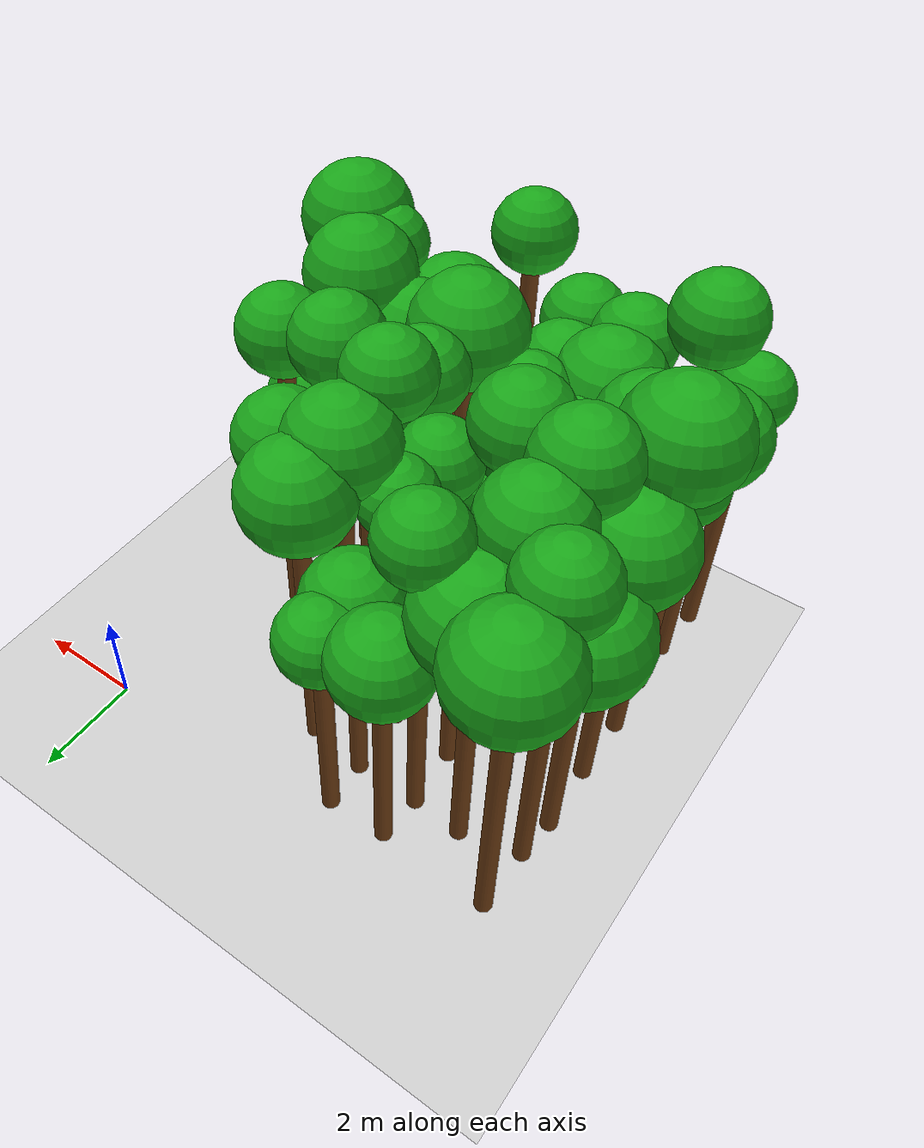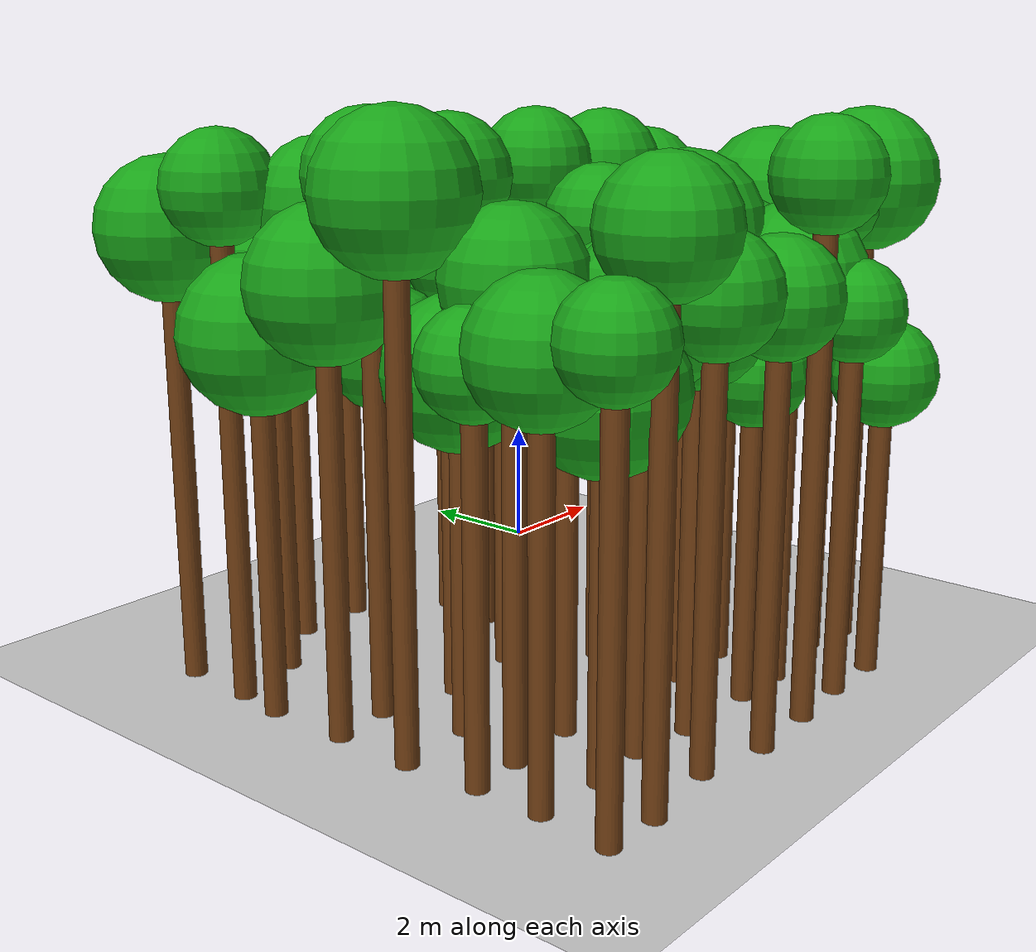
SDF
<sdf version="1.6">
 <world name="forest_world">
  <include><uri>model://sun</uri></include>
  <include><uri>model://ground_plane</uri></include>
  <model name="tree_1120_trunk">
   <static>true</static>
   <pose>-7.92 -7.97 2.75 0 0 0</pose>
   <link name="link">
    <collision name="collision">
     <geometry><cylinder><radius>0.16</radius><length>5.50</length></cylinder></geometry>
    </collision>
    <visual name="visual">
     <geometry><cylinder><radius>0.16</radius><length>5.50</length></cylinder></geometry>
     <material><ambient>0.35 0.20 0.05 1</ambient><diffuse>0.45 0.25 0.08 1</diffuse></material>
    </visual>
   </link>
  </model>
  <model name="tree_1120_leaf">
   <static>true</static>
   <pose>-7.92 -7.97 5.93 0 0 0</pose>
   <link name="link">
    <collision name="collision"><geometry><sphere><radius>0.71</radius></sphere></geometry></collision>
    <visual name="visual">
     <geometry><sphere><radius>0.71</radius></sphere></geometry>
     <material><ambient>0.05 0.45 0.05 1</ambient><diffuse>0.10 0.65 0.10 1</diffuse></material>
    </visual>
   </link>
  </model>
  <model name="tree_1121_trunk">
   <static>true</static>
   <pose>-7.84 -6.90 2.57 0 0 0</pose>
   <link name="link">
    <collision name="collision">
     <geometry><cylinder><radius>0.16</radius><length>5.13</length></cylinder></geometry>
    </collision>
    <visual name="visual">
     <geometry><cylinder><radius>0.16</radius><length>5.13</length></cylinder></geometry>
     <material><ambient>0.35 0.20 0.05 1</ambient><diffuse>0.45 0.25 0.08 1</diffuse></material>
    </visual>
   </link>
  </model>
  <model name="tree_1121_leaf">
   <static>true</static>
   <pose>-7.84 -6.90 5.68 0 0 0</pose>
   <link name="link">
    <collision name="collision"><geometry><sphere><radius>0.92</radius></sphere></geometry></collision>
    <visual name="visual">
     <geometry><sphere><radius>0.92</radius></sphere></geometry>
     <material><ambient>0.05 0.45 0.05 1</ambient><diffuse>0.10 0.65 0.10 1</diffuse></material>
    </visual>
   </link>
  </model>
  <model name="tree_1122_trunk">
   <static>true</static>
   <pose>-7.85 -5.90 2.49 0 0 0</pose>
   <link name="link">
    <collision name="collision">
     <geometry><cylinder><radius>0.16</radius><length>4.97</length></cylinder></geometry>
    </collision>
    <visual name="visual">
     <geometry><cylinder><radius>0.16</radius><length>4.97</length></cylinder></geometry>
     <material><ambient>0.35 0.20 0.05 1</ambient><diffuse>0.45 0.25 0.08 1</diffuse></material>
    </visual>
   </link>
  </model>
  <model name="tree_1122_leaf">
   <static>true</static>
   <pose>-7.85 -5.90 5.40 0 0 0</pose>
   <link name="link">
    <collision name="collision"><geometry><sphere><radius>0.71</radius></sphere></geometry></collision>
    <visual name="visual">
     <geometry><sphere><radius>0.71</radius></sphere></geometry>
     <material><ambient>0.05 0.45 0.05 1</ambient><diffuse>0.10 0.65 0.10 1</diffuse></material>
    </visual>
   </link>
  </model>
  <model name="tree_1123_trunk">
   <static>true</static>
   <pose>-7.95 -4.79 3.34 0 0 0</pose>
   <link name="link">
    <collision name="collision">
     <geometry><cylinder><radius>0.16</radius><length>6.67</length></cylinder></geometry>
    </collision>
    <visual name="visual">
     <geometry><cylinder><radius>0.16</radius><length>6.67</length></cylinder></geometry>
     <material><ambient>0.35 0.20 0.05 1</ambient><diffuse>0.45 0.25 0.08 1</diffuse></material>
    </visual>
   </link>
  </model>
  <model name="tree_1123_leaf">
   <static>true</static>
   <pose>-7.95 -4.79 7.29 0 0 0</pose>
   <link name="link">
    <collision name="collision"><geometry><sphere><radius>1.03</radius></sphere></geometry></collision>
    <visual name="visual">
     <geometry><sphere><radius>1.03</radius></sphere></geometry>
     <material><ambient>0.05 0.45 0.05 1</ambient><diffuse>0.10 0.65 0.10 1</diffuse></material>
    </visual>
   </link>
  </model>
  <model name="tree_1124_trunk">
   <static>true</static>
   <pose>-7.95 -3.57 2.74 0 0 0</pose>
   <link name="link">
    <collision name="collision">
     <geometry><cylinder><radius>0.16</radius><length>5.48</length></cylinder></geometry>
    </collision>
    <visual name="visual">
     <geometry><cylinder><radius>0.16</radius><length>5.48</length></cylinder></geometry>
     <material><ambient>0.35 0.20 0.05 1</ambient><diffuse>0.45 0.25 0.08 1</diffuse></material>
    </visual>
   </link>
  </model>
  <model name="tree_1124_leaf">
   <static>true</static>
   <pose>-7.95 -3.57 6.10 0 0 0</pose>
   <link name="link">
    <collision name="collision"><geometry><sphere><radius>1.03</radius></sphere></geometry></collision>
    <visual name="visual">
     <geometry><sphere><radius>1.03</radius></sphere></geometry>
     <material><ambient>0.05 0.45 0.05 1</ambient><diffuse>0.10 0.65 0.10 1</diffuse></material>
    </visual>
   </link>
  </model>
  <model name="tree_1125_trunk">
   <static>true</static>
   <pose>-7.99 -2.32 2.34 0 0 0</pose>
   <link name="link">
    <collision name="collision">
     <geometry><cylinder><radius>0.16</radius><length>4.68</length></cylinder></geometry>
    </collision>
    <visual name="visual">
     <geometry><cylinder><radius>0.16</radius><length>4.68</length></cylinder></geometry>
     <material><ambient>0.35 0.20 0.05 1</ambient><diffuse>0.45 0.25 0.08 1</diffuse></material>
    </visual>
   </link>
  </model>
  <model name="tree_1125_leaf">
   <static>true</static>
   <pose>-7.99 -2.32 5.32 0 0 0</pose>
   <link name="link">
    <collision name="collision"><geometry><sphere><radius>1.07</radius></sphere></geometry></collision>
    <visual name="visual">
     <geometry><sphere><radius>1.07</radius></sphere></geometry>
     <material><ambient>0.05 0.45 0.05 1</ambient><diffuse>0.10 0.65 0.10 1</diffuse></material>
    </visual>
   </link>
  </model>
  <model name="tree_1126_trunk">
   <static>true</static>
   <pose>-7.90 -1.56 3.34 0 0 0</pose>
   <link name="link">
    <collision name="collision">
     <geometry><cylinder><radius>0.16</radius><length>6.69</length></cylinder></geometry>
    </collision>
    <visual name="visual">
     <geometry><cylinder><radius>0.16</radius><length>6.69</length></cylinder></geometry>
     <material><ambient>0.35 0.20 0.05 1</ambient><diffuse>0.45 0.25 0.08 1</diffuse></material>
    </visual>
   </link>
  </model>
  <model name="tree_1126_leaf">
   <static>true</static>
   <pose>-7.90 -1.56 7.15 0 0 0</pose>
   <link name="link">
    <collision name="collision"><geometry><sphere><radius>0.78</radius></sphere></geometry></collision>
    <visual name="visual">
     <geometry><sphere><radius>0.78</radius></sphere></geometry>
     <material><ambient>0.05 0.45 0.05 1</ambient><diffuse>0.10 0.65 0.10 1</diffuse></material>
    </visual>
   </link>
  </model>
  <model name="tree_1127_trunk">
   <static>true</static>
   <pose>-7.86 -0.41 2.96 0 0 0</pose>
   <link name="link">
    <collision name="collision">
     <geometry><cylinder><radius>0.16</radius><length>5.92</length></cylinder></geometry>
    </collision>
    <visual name="visual">
     <geometry><cylinder><radius>0.16</radius><length>5.92</length></cylinder></geometry>
     <material><ambient>0.35 0.20 0.05 1</ambient><diffuse>0.45 0.25 0.08 1</diffuse></material>
    </visual>
   </link>
  </model>
  <model name="tree_1127_leaf">
   <static>true</static>
   <pose>-7.86 -0.41 6.52 0 0 0</pose>
   <link name="link">
    <collision name="collision"><geometry><sphere><radius>1.01</radius></sphere></geometry></collision>
    <visual name="visual">
     <geometry><sphere><radius>1.01</radius></sphere></geometry>
     <material><ambient>0.05 0.45 0.05 1</ambient><diffuse>0.10 0.65 0.10 1</diffuse></material>
    </visual>
   </link>
  </model>
  <model name="tree_1175_trunk">
   <static>true</static>
   <pose>-7.05 -8.00 3.27 0 0 0</pose>
   <link name="link">
    <collision name="collision">
     <geometry><cylinder><radius>0.16</radius><length>6.54</length></cylinder></geometry>
    </collision>
    <visual name="visual">
     <geometry><cylinder><radius>0.16</radius><length>6.54</length></cylinder></geometry>
     <material><ambient>0.35 0.20 0.05 1</ambient><diffuse>0.45 0.25 0.08 1</diffuse></material>
    </visual>
   </link>
  </model>
  <model name="tree_1175_leaf">
   <static>true</static>
   <pose>-7.05 -8.00 7.05 0 0 0</pose>
   <link name="link">
    <collision name="collision"><geometry><sphere><radius>0.84</radius></sphere></geometry></collision>
    <visual name="visual">
     <geometry><sphere><radius>0.84</radius></sphere></geometry>
     <material><ambient>0.05 0.45 0.05 1</ambient><diffuse>0.10 0.65 0.10 1</diffuse></material>
    </visual>
   </link>
  </model>
  <model name="tree_1176_trunk">
   <static>true</static>
   <pose>-6.78 -6.98 2.21 0 0 0</pose>
   <link name="link">
    <collision name="collision">
     <geometry><cylinder><radius>0.16</radius><length>4.41</length></cylinder></geometry>
    </collision>
    <visual name="visual">
     <geometry><cylinder><radius>0.16</radius><length>4.41</length></cylinder></geometry>
     <material><ambient>0.35 0.20 0.05 1</ambient><diffuse>0.45 0.25 0.08 1</diffuse></material>
    </visual>
   </link>
  </model>
  <model name="tree_1176_leaf">
   <static>true</static>
   <pose>-6.78 -6.98 5.04 0 0 0</pose>
   <link name="link">
    <collision name="collision"><geometry><sphere><radius>1.05</radius></sphere></geometry></collision>
    <visual name="visual">
     <geometry><sphere><radius>1.05</radius></sphere></geometry>
     <material><ambient>0.05 0.45 0.05 1</ambient><diffuse>0.10 0.65 0.10 1</diffuse></material>
    </visual>
   </link>
  </model>
  <model name="tree_1177_trunk">
   <static>true</static>
   <pose>-7.03 -5.82 2.85 0 0 0</pose>
   <link name="link">
    <collision name="collision">
     <geometry><cylinder><radius>0.16</radius><length>5.71</length></cylinder></geometry>
    </collision>
    <visual name="visual">
     <geometry><cylinder><radius>0.16</radius><length>5.71</length></cylinder></geometry>
     <material><ambient>0.35 0.20 0.05 1</ambient><diffuse>0.45 0.25 0.08 1</diffuse></material>
    </visual>
   </link>
  </model>
  <model name="tree_1177_leaf">
   <static>true</static>
   <pose>-7.03 -5.82 6.27 0 0 0</pose>
   <link name="link">
    <collision name="collision"><geometry><sphere><radius>0.93</radius></sphere></geometry></collision>
    <visual name="visual">
     <geometry><sphere><radius>0.93</radius></sphere></geometry>
     <material><ambient>0.05 0.45 0.05 1</ambient><diffuse>0.10 0.65 0.10 1</diffuse></material>
    </visual>
   </link>
  </model>
  <model name="tree_1178_trunk">
   <static>true</static>
   <pose>-6.78 -4.72 2.17 0 0 0</pose>
   <link name="link">
    <collision name="collision">
     <geometry><cylinder><radius>0.16</radius><length>4.33</length></cylinder></geometry>
    </collision>
    <visual name="visual">
     <geometry><cylinder><radius>0.16</radius><length>4.33</length></cylinder></geometry>
     <material><ambient>0.35 0.20 0.05 1</ambient><diffuse>0.45 0.25 0.08 1</diffuse></material>
    </visual>
   </link>
  </model>
  <model name="tree_1178_leaf">
   <static>true</static>
   <pose>-6.78 -4.72 4.95 0 0 0</pose>
   <link name="link">
    <collision name="collision"><geometry><sphere><radius>1.03</radius></sphere></geometry></collision>
    <visual name="visual">
     <geometry><sphere><radius>1.03</radius></sphere></geometry>
     <material><ambient>0.05 0.45 0.05 1</ambient><diffuse>0.10 0.65 0.10 1</diffuse></material>
    </visual>
   </link>
  </model>
  <model name="tree_1179_trunk">
   <static>true</static>
   <pose>-7.07 -3.48 3.42 0 0 0</pose>
   <link name="link">
    <collision name="collision">
     <geometry><cylinder><radius>0.16</radius><length>6.84</length></cylinder></geometry>
    </collision>
    <visual name="visual">
     <geometry><cylinder><radius>0.16</radius><length>6.84</length></cylinder></geometry>
     <material><ambient>0.35 0.20 0.05 1</ambient><diffuse>0.45 0.25 0.08 1</diffuse></material>
    </visual>
   </link>
  </model>
  <model name="tree_1179_leaf">
   <static>true</static>
   <pose>-7.07 -3.48 7.36 0 0 0</pose>
   <link name="link">
    <collision name="collision"><geometry><sphere><radius>0.87</radius></sphere></geometry></collision>
    <visual name="visual">
     <geometry><sphere><radius>0.87</radius></sphere></geometry>
     <material><ambient>0.05 0.45 0.05 1</ambient><diffuse>0.10 0.65 0.10 1</diffuse></material>
    </visual>
   </link>
  </model>
  <model name="tree_1180_trunk">
   <static>true</static>
   <pose>-6.92 -2.46 3.19 0 0 0</pose>
   <link name="link">
    <collision name="collision">
     <geometry><cylinder><radius>0.16</radius><length>6.37</length></cylinder></geometry>
    </collision>
    <visual name="visual">
     <geometry><cylinder><radius>0.16</radius><length>6.37</length></cylinder></geometry>
     <material><ambient>0.35 0.20 0.05 1</ambient><diffuse>0.45 0.25 0.08 1</diffuse></material>
    </visual>
   </link>
  </model>
  <model name="tree_1180_leaf">
   <static>true</static>
   <pose>-6.92 -2.46 6.91 0 0 0</pose>
   <link name="link">
    <collision name="collision"><geometry><sphere><radius>0.91</radius></sphere></geometry></collision>
    <visual name="visual">
     <geometry><sphere><radius>0.91</radius></sphere></geometry>
     <material><ambient>0.05 0.45 0.05 1</ambient><diffuse>0.10 0.65 0.10 1</diffuse></material>
    </visual>
   </link>
  </model>
  <model name="tree_1181_trunk">
   <static>true</static>
   <pose>-6.80 -1.26 2.68 0 0 0</pose>
   <link name="link">
    <collision name="collision">
     <geometry><cylinder><radius>0.16</radius><length>5.37</length></cylinder></geometry>
    </collision>
    <visual name="visual">
     <geometry><cylinder><radius>0.16</radius><length>5.37</length></cylinder></geometry>
     <material><ambient>0.35 0.20 0.05 1</ambient><diffuse>0.45 0.25 0.08 1</diffuse></material>
    </visual>
   </link>
  </model>
  <model name="tree_1181_leaf">
   <static>true</static>
   <pose>-6.80 -1.26 5.99 0 0 0</pose>
   <link name="link">
    <collision name="collision"><geometry><sphere><radius>1.03</radius></sphere></geometry></collision>
    <visual name="visual">
     <geometry><sphere><radius>1.03</radius></sphere></geometry>
     <material><ambient>0.05 0.45 0.05 1</ambient><diffuse>0.10 0.65 0.10 1</diffuse></material>
    </visual>
   </link>
  </model>
  <model name="tree_1230_trunk">
   <static>true</static>
   <pose>-5.76 -7.83 2.83 0 0 0</pose>
   <link name="link">
    <collision name="collision">
     <geometry><cylinder><radius>0.16</radius><length>5.66</length></cylinder></geometry>
    </collision>
    <visual name="visual">
     <geometry><cylinder><radius>0.16</radius><length>5.66</length></cylinder></geometry>
     <material><ambient>0.35 0.20 0.05 1</ambient><diffuse>0.45 0.25 0.08 1</diffuse></material>
    </visual>
   </link>
  </model>
  <model name="tree_1230_leaf">
   <static>true</static>
   <pose>-5.76 -7.83 6.14 0 0 0</pose>
   <link name="link">
    <collision name="collision"><geometry><sphere><radius>0.81</radius></sphere></geometry></collision>
    <visual name="visual">
     <geometry><sphere><radius>0.81</radius></sphere></geometry>
     <material><ambient>0.05 0.45 0.05 1</ambient><diffuse>0.10 0.65 0.10 1</diffuse></material>
    </visual>
   </link>
  </model>
  <model name="tree_1231_trunk">
   <static>true</static>
   <pose>-5.83 -6.86 2.60 0 0 0</pose>
   <link name="link">
    <collision name="collision">
     <geometry><cylinder><radius>0.16</radius><length>5.20</length></cylinder></geometry>
    </collision>
    <visual name="visual">
     <geometry><cylinder><radius>0.16</radius><length>5.20</length></cylinder></geometry>
     <material><ambient>0.35 0.20 0.05 1</ambient><diffuse>0.45 0.25 0.08 1</diffuse></material>
    </visual>
   </link>
  </model>
  <model name="tree_1231_leaf">
   <static>true</static>
   <pose>-5.83 -6.86 5.82 0 0 0</pose>
   <link name="link">
    <collision name="collision"><geometry><sphere><radius>1.04</radius></sphere></geometry></collision>
    <visual name="visual">
     <geometry><sphere><radius>1.04</radius></sphere></geometry>
     <material><ambient>0.05 0.45 0.05 1</ambient><diffuse>0.10 0.65 0.10 1</diffuse></material>
    </visual>
   </link>
  </model>
  <model name="tree_1232_trunk">
   <static>true</static>
   <pose>-5.91 -5.75 2.50 0 0 0</pose>
   <link name="link">
    <collision name="collision">
     <geometry><cylinder><radius>0.16</radius><length>5.01</length></cylinder></geometry>
    </collision>
    <visual name="visual">
     <geometry><cylinder><radius>0.16</radius><length>5.01</length></cylinder></geometry>
     <material><ambient>0.35 0.20 0.05 1</ambient><diffuse>0.45 0.25 0.08 1</diffuse></material>
    </visual>
   </link>
  </model>
  <model name="tree_1232_leaf">
   <static>true</static>
   <pose>-5.91 -5.75 5.47 0 0 0</pose>
   <link name="link">
    <collision name="collision"><geometry><sphere><radius>0.77</radius></sphere></geometry></collision>
    <visual name="visual">
     <geometry><sphere><radius>0.77</radius></sphere></geometry>
     <material><ambient>0.05 0.45 0.05 1</ambient><diffuse>0.10 0.65 0.10 1</diffuse></material>
    </visual>
   </link>
  </model>
  <model name="tree_1233_trunk">
   <static>true</static>
   <pose>-5.67 -4.75 2.68 0 0 0</pose>
   <link name="link">
    <collision name="collision">
     <geometry><cylinder><radius>0.16</radius><length>5.35</length></cylinder></geometry>
    </collision>
    <visual name="visual">
     <geometry><cylinder><radius>0.16</radius><length>5.35</length></cylinder></geometry>
     <material><ambient>0.35 0.20 0.05 1</ambient><diffuse>0.45 0.25 0.08 1</diffuse></material>
    </visual>
   </link>
  </model>
  <model name="tree_1233_leaf">
   <static>true</static>
   <pose>-5.67 -4.75 5.91 0 0 0</pose>
   <link name="link">
    <collision name="collision"><geometry><sphere><radius>0.93</radius></sphere></geometry></collision>
    <visual name="visual">
     <geometry><sphere><radius>0.93</radius></sphere></geometry>
     <material><ambient>0.05 0.45 0.05 1</ambient><diffuse>0.10 0.65 0.10 1</diffuse></material>
    </visual>
   </link>
  </model>
  <model name="tree_1234_trunk">
   <static>true</static>
   <pose>-5.90 -3.76 3.39 0 0 0</pose>
   <link name="link">
    <collision name="collision">
     <geometry><cylinder><radius>0.16</radius><length>6.77</length></cylinder></geometry>
    </collision>
    <visual name="visual">
     <geometry><cylinder><radius>0.16</radius><length>6.77</length></cylinder></geometry>
     <material><ambient>0.35 0.20 0.05 1</ambient><diffuse>0.45 0.25 0.08 1</diffuse></material>
    </visual>
   </link>
  </model>
  <model name="tree_1234_leaf">
   <static>true</static>
   <pose>-5.90 -3.76 7.28 0 0 0</pose>
   <link name="link">
    <collision name="collision"><geometry><sphere><radius>0.84</radius></sphere></geometry></collision>
    <visual name="visual">
     <geometry><sphere><radius>0.84</radius></sphere></geometry>
     <material><ambient>0.05 0.45 0.05 1</ambient><diffuse>0.10 0.65 0.10 1</diffuse></material>
    </visual>
   </link>
  </model>
  <model name="tree_1235_trunk">
   <static>true</static>
   <pose>-5.78 -2.44 2.12 0 0 0</pose>
   <link name="link">
    <collision name="collision">
     <geometry><cylinder><radius>0.16</radius><length>4.25</length></cylinder></geometry>
    </collision>
    <visual name="visual">
     <geometry><cylinder><radius>0.16</radius><length>4.25</length></cylinder></geometry>
     <material><ambient>0.35 0.20 0.05 1</ambient><diffuse>0.45 0.25 0.08 1</diffuse></material>
    </visual>
   </link>
  </model>
  <model name="tree_1235_leaf">
   <static>true</static>
   <pose>-5.78 -2.44 4.80 0 0 0</pose>
   <link name="link">
    <collision name="collision"><geometry><sphere><radius>0.92</radius></sphere></geometry></collision>
    <visual name="visual">
     <geometry><sphere><radius>0.92</radius></sphere></geometry>
     <material><ambient>0.05 0.45 0.05 1</ambient><diffuse>0.10 0.65 0.10 1</diffuse></material>
    </visual>
   </link>
  </model>
  <model name="tree_1236_trunk">
   <static>true</static>
   <pose>-5.85 -1.30 3.24 0 0 0</pose>
   <link name="link">
    <collision name="collision">
     <geometry><cylinder><radius>0.16</radius><length>6.47</length></cylinder></geometry>
    </collision>
    <visual name="visual">
     <geometry><cylinder><radius>0.16</radius><length>6.47</length></cylinder></geometry>
     <material><ambient>0.35 0.20 0.05 1</ambient><diffuse>0.45 0.25 0.08 1</diffuse></material>
    </visual>
   </link>
  </model>
  <model name="tree_1236_leaf">
   <static>true</static>
   <pose>-5.85 -1.30 6.92 0 0 0</pose>
   <link name="link">
    <collision name="collision"><geometry><sphere><radius>0.75</radius></sphere></geometry></collision>
    <visual name="visual">
     <geometry><sphere><radius>0.75</radius></sphere></geometry>
     <material><ambient>0.05 0.45 0.05 1</ambient><diffuse>0.10 0.65 0.10 1</diffuse></material>
    </visual>
   </link>
  </model>
  <model name="tree_1237_trunk">
   <static>true</static>
   <pose>-5.76 -0.47 2.21 0 0 0</pose>
   <link name="link">
    <collision name="collision">
     <geometry><cylinder><radius>0.16</radius><length>4.43</length></cylinder></geometry>
    </collision>
    <visual name="visual">
     <geometry><cylinder><radius>0.16</radius><length>4.43</length></cylinder></geometry>
     <material><ambient>0.35 0.20 0.05 1</ambient><diffuse>0.45 0.25 0.08 1</diffuse></material>
    </visual>
   </link>
  </model>
  <model name="tree_1237_leaf">
   <static>true</static>
   <pose>-5.76 -0.47 4.96 0 0 0</pose>
   <link name="link">
    <collision name="collision"><geometry><sphere><radius>0.88</radius></sphere></geometry></collision>
    <visual name="visual">
     <geometry><sphere><radius>0.88</radius></sphere></geometry>
     <material><ambient>0.05 0.45 0.05 1</ambient><diffuse>0.10 0.65 0.10 1</diffuse></material>
    </visual>
   </link>
  </model>
  <model name="tree_1285_trunk">
   <static>true</static>
   <pose>-4.66 -8.05 2.75 0 0 0</pose>
   <link name="link">
    <collision name="collision">
     <geometry><cylinder><radius>0.16</radius><length>5.50</length></cylinder></geometry>
    </collision>
    <visual name="visual">
     <geometry><cylinder><radius>0.16</radius><length>5.50</length></cylinder></geometry>
     <material><ambient>0.35 0.20 0.05 1</ambient><diffuse>0.45 0.25 0.08 1</diffuse></material>
    </visual>
   </link>
  </model>
  <model name="tree_1285_leaf">
   <static>true</static>
   <pose>-4.66 -8.05 5.98 0 0 0</pose>
   <link name="link">
    <collision name="collision"><geometry><sphere><radius>0.79</radius></sphere></geometry></collision>
    <visual name="visual">
     <geometry><sphere><radius>0.79</radius></sphere></geometry>
     <material><ambient>0.05 0.45 0.05 1</ambient><diffuse>0.10 0.65 0.10 1</diffuse></material>
    </visual>
   </link>
  </model>
  <model name="tree_1286_trunk">
   <static>true</static>
   <pose>-4.87 -7.01 2.54 0 0 0</pose>
   <link name="link">
    <collision name="collision">
     <geometry><cylinder><radius>0.16</radius><length>5.07</length></cylinder></geometry>
    </collision>
    <visual name="visual">
     <geometry><cylinder><radius>0.16</radius><length>5.07</length></cylinder></geometry>
     <material><ambient>0.35 0.20 0.05 1</ambient><diffuse>0.45 0.25 0.08 1</diffuse></material>
    </visual>
   </link>
  </model>
  <model name="tree_1286_leaf">
   <static>true</static>
   <pose>-4.87 -7.01 5.61 0 0 0</pose>
   <link name="link">
    <collision name="collision"><geometry><sphere><radius>0.89</radius></sphere></geometry></collision>
    <visual name="visual">
     <geometry><sphere><radius>0.89</radius></sphere></geometry>
     <material><ambient>0.05 0.45 0.05 1</ambient><diffuse>0.10 0.65 0.10 1</diffuse></material>
    </visual>
   </link>
  </model>
  <model name="tree_1287_trunk">
   <static>true</static>
   <pose>-4.88 -5.83 2.63 0 0 0</pose>
   <link name="link">
    <collision name="collision">
     <geometry><cylinder><radius>0.16</radius><length>5.26</length></cylinder></geometry>
    </collision>
    <visual name="visual">
     <geometry><cylinder><radius>0.16</radius><length>5.26</length></cylinder></geometry>
     <material><ambient>0.35 0.20 0.05 1</ambient><diffuse>0.45 0.25 0.08 1</diffuse></material>
    </visual>
   </link>
  </model>
  <model name="tree_1287_leaf">
   <static>true</static>
   <pose>-4.88 -5.83 5.76 0 0 0</pose>
   <link name="link">
    <collision name="collision"><geometry><sphere><radius>0.83</radius></sphere></geometry></collision>
    <visual name="visual">
     <geometry><sphere><radius>0.83</radius></sphere></geometry>
     <material><ambient>0.05 0.45 0.05 1</ambient><diffuse>0.10 0.65 0.10 1</diffuse></material>
    </visual>
   </link>
  </model>
  <model name="tree_1288_trunk">
   <static>true</static>
   <pose>-4.85 -4.74 2.15 0 0 0</pose>
   <link name="link">
    <collision name="collision">
     <geometry><cylinder><radius>0.16</radius><length>4.30</length></cylinder></geometry>
    </collision>
    <visual name="visual">
     <geometry><cylinder><radius>0.16</radius><length>4.30</length></cylinder></geometry>
     <material><ambient>0.35 0.20 0.05 1</ambient><diffuse>0.45 0.25 0.08 1</diffuse></material>
    </visual>
   </link>
  </model>
  <model name="tree_1288_leaf">
   <static>true</static>
   <pose>-4.85 -4.74 4.76 0 0 0</pose>
   <link name="link">
    <collision name="collision"><geometry><sphere><radius>0.76</radius></sphere></geometry></collision>
    <visual name="visual">
     <geometry><sphere><radius>0.76</radius></sphere></geometry>
     <material><ambient>0.05 0.45 0.05 1</ambient><diffuse>0.10 0.65 0.10 1</diffuse></material>
    </visual>
   </link>
  </model>
  <model name="tree_1289_trunk">
   <static>true</static>
   <pose>-4.60 -3.59 2.73 0 0 0</pose>
   <link name="link">
    <collision name="collision">
     <geometry><cylinder><radius>0.16</radius><length>5.46</length></cylinder></geometry>
    </collision>
    <visual name="visual">
     <geometry><cylinder><radius>0.16</radius><length>5.46</length></cylinder></geometry>
     <material><ambient>0.35 0.20 0.05 1</ambient><diffuse>0.45 0.25 0.08 1</diffuse></material>
    </visual>
   </link>
  </model>
  <model name="tree_1289_leaf">
   <static>true</static>
   <pose>-4.60 -3.59 5.91 0 0 0</pose>
   <link name="link">
    <collision name="collision"><geometry><sphere><radius>0.75</radius></sphere></geometry></collision>
    <visual name="visual">
     <geometry><sphere><radius>0.75</radius></sphere></geometry>
     <material><ambient>0.05 0.45 0.05 1</ambient><diffuse>0.10 0.65 0.10 1</diffuse></material>
    </visual>
   </link>
  </model>
  <model name="tree_1290_trunk">
   <static>true</static>
   <pose>-4.53 -2.54 2.75 0 0 0</pose>
   <link name="link">
    <collision name="collision">
     <geometry><cylinder><radius>0.16</radius><length>5.51</length></cylinder></geometry>
    </collision>
    <visual name="visual">
     <geometry><cylinder><radius>0.16</radius><length>5.51</length></cylinder></geometry>
     <material><ambient>0.35 0.20 0.05 1</ambient><diffuse>0.45 0.25 0.08 1</diffuse></material>
    </visual>
   </link>
  </model>
  <model name="tree_1290_leaf">
   <static>true</static>
   <pose>-4.53 -2.54 5.93 0 0 0</pose>
   <link name="link">
    <collision name="collision"><geometry><sphere><radius>0.70</radius></sphere></geometry></collision>
    <visual name="visual">
     <geometry><sphere><radius>0.70</radius></sphere></geometry>
     <material><ambient>0.05 0.45 0.05 1</ambient><diffuse>0.10 0.65 0.10 1</diffuse></material>
    </visual>
   </link>
  </model>
  <model name="tree_1291_trunk">
   <static>true</static>
   <pose>-4.62 -1.29 2.08 0 0 0</pose>
   <link name="link">
    <collision name="collision">
     <geometry><cylinder><radius>0.16</radius><length>4.16</length></cylinder></geometry>
    </collision>
    <visual name="visual">
     <geometry><cylinder><radius>0.16</radius><length>4.16</length></cylinder></geometry>
     <material><ambient>0.35 0.20 0.05 1</ambient><diffuse>0.45 0.25 0.08 1</diffuse></material>
    </visual>
   </link>
  </model>
  <model name="tree_1291_leaf">
   <static>true</static>
   <pose>-4.62 -1.29 4.69 0 0 0</pose>
   <link name="link">
    <collision name="collision"><geometry><sphere><radius>0.89</radius></sphere></geometry></collision>
    <visual name="visual">
     <geometry><sphere><radius>0.89</radius></sphere></geometry>
     <material><ambient>0.05 0.45 0.05 1</ambient><diffuse>0.10 0.65 0.10 1</diffuse></material>
    </visual>
   </link>
  </model>
  <model name="tree_1292_trunk">
   <static>true</static>
   <pose>-4.64 -0.43 2.11 0 0 0</pose>
   <link name="link">
    <collision name="collision">
     <geometry><cylinder><radius>0.16</radius><length>4.22</length></cylinder></geometry>
    </collision>
    <visual name="visual">
     <geometry><cylinder><radius>0.16</radius><length>4.22</length></cylinder></geometry>
     <material><ambient>0.35 0.20 0.05 1</ambient><diffuse>0.45 0.25 0.08 1</diffuse></material>
    </visual>
   </link>
  </model>
  <model name="tree_1292_leaf">
   <static>true</static>
   <pose>-4.64 -0.43 4.68 0 0 0</pose>
   <link name="link">
    <collision name="collision"><geometry><sphere><radius>0.75</radius></sphere></geometry></collision>
    <visual name="visual">
     <geometry><sphere><radius>0.75</radius></sphere></geometry>
     <material><ambient>0.05 0.45 0.05 1</ambient><diffuse>0.10 0.65 0.10 1</diffuse></material>
    </visual>
   </link>
  </model>
  <model name="tree_1340_trunk">
   <static>true</static>
   <pose>-3.53 -8.00 3.46 0 0 0</pose>
   <link name="link">
    <collision name="collision">
     <geometry><cylinder><radius>0.16</radius><length>6.91</length></cylinder></geometry>
    </collision>
    <visual name="visual">
     <geometry><cylinder><radius>0.16</radius><length>6.91</length></cylinder></geometry>
     <material><ambient>0.35 0.20 0.05 1</ambient><diffuse>0.45 0.25 0.08 1</diffuse></material>
    </visual>
   </link>
  </model>
  <model name="tree_1340_leaf">
   <static>true</static>
   <pose>-3.53 -8.00 7.37 0 0 0</pose>
   <link name="link">
    <collision name="collision"><geometry><sphere><radius>0.76</radius></sphere></geometry></collision>
    <visual name="visual">
     <geometry><sphere><radius>0.76</radius></sphere></geometry>
     <material><ambient>0.05 0.45 0.05 1</ambient><diffuse>0.10 0.65 0.10 1</diffuse></material>
    </visual>
   </link>
  </model>
  <model name="tree_1341_trunk">
   <static>true</static>
   <pose>-3.48 -7.02 2.13 0 0 0</pose>
   <link name="link">
    <collision name="collision">
     <geometry><cylinder><radius>0.16</radius><length>4.26</length></cylinder></geometry>
    </collision>
    <visual name="visual">
     <geometry><cylinder><radius>0.16</radius><length>4.26</length></cylinder></geometry>
     <material><ambient>0.35 0.20 0.05 1</ambient><diffuse>0.45 0.25 0.08 1</diffuse></material>
    </visual>
   </link>
  </model>
  <model name="tree_1341_leaf">
   <static>true</static>
   <pose>-3.48 -7.02 4.71 0 0 0</pose>
   <link name="link">
    <collision name="collision"><geometry><sphere><radius>0.75</radius></sphere></geometry></collision>
    <visual name="visual">
     <geometry><sphere><radius>0.75</radius></sphere></geometry>
     <material><ambient>0.05 0.45 0.05 1</ambient><diffuse>0.10 0.65 0.10 1</diffuse></material>
    </visual>
   </link>
  </model>
  <model name="tree_1342_trunk">
   <static>true</static>
   <pose>-3.56 -5.93 2.96 0 0 0</pose>
   <link name="link">
    <collision name="collision">
     <geometry><cylinder><radius>0.16</radius><length>5.91</length></cylinder></geometry>
    </collision>
    <visual name="visual">
     <geometry><cylinder><radius>0.16</radius><length>5.91</length></cylinder></geometry>
     <material><ambient>0.35 0.20 0.05 1</ambient><diffuse>0.45 0.25 0.08 1</diffuse></material>
    </visual>
   </link>
  </model>
  <model name="tree_1342_leaf">
   <static>true</static>
   <pose>-3.56 -5.93 6.55 0 0 0</pose>
   <link name="link">
    <collision name="collision"><geometry><sphere><radius>1.07</radius></sphere></geometry></collision>
    <visual name="visual">
     <geometry><sphere><radius>1.07</radius></sphere></geometry>
     <material><ambient>0.05 0.45 0.05 1</ambient><diffuse>0.10 0.65 0.10 1</diffuse></material>
    </visual>
   </link>
  </model>
  <model name="tree_1343_trunk">
   <static>true</static>
   <pose>-3.60 -4.53 3.03 0 0 0</pose>
   <link name="link">
    <collision name="collision">
     <geometry><cylinder><radius>0.16</radius><length>6.06</length></cylinder></geometry>
    </collision>
    <visual name="visual">
     <geometry><cylinder><radius>0.16</radius><length>6.06</length></cylinder></geometry>
     <material><ambient>0.35 0.20 0.05 1</ambient><diffuse>0.45 0.25 0.08 1</diffuse></material>
    </visual>
   </link>
  </model>
  <model name="tree_1343_leaf">
   <static>true</static>
   <pose>-3.60 -4.53 6.55 0 0 0</pose>
   <link name="link">
    <collision name="collision"><geometry><sphere><radius>0.81</radius></sphere></geometry></collision>
    <visual name="visual">
     <geometry><sphere><radius>0.81</radius></sphere></geometry>
     <material><ambient>0.05 0.45 0.05 1</ambient><diffuse>0.10 0.65 0.10 1</diffuse></material>
    </visual>
   </link>
  </model>
  <model name="tree_1344_trunk">
   <static>true</static>
   <pose>-3.72 -3.45 3.41 0 0 0</pose>
   <link name="link">
    <collision name="collision">
     <geometry><cylinder><radius>0.16</radius><length>6.83</length></cylinder></geometry>
    </collision>
    <visual name="visual">
     <geometry><cylinder><radius>0.16</radius><length>6.83</length></cylinder></geometry>
     <material><ambient>0.35 0.20 0.05 1</ambient><diffuse>0.45 0.25 0.08 1</diffuse></material>
    </visual>
   </link>
  </model>
  <model name="tree_1344_leaf">
   <static>true</static>
   <pose>-3.72 -3.45 7.31 0 0 0</pose>
   <link name="link">
    <collision name="collision"><geometry><sphere><radius>0.79</radius></sphere></geometry></collision>
    <visual name="visual">
     <geometry><sphere><radius>0.79</radius></sphere></geometry>
     <material><ambient>0.05 0.45 0.05 1</ambient><diffuse>0.10 0.65 0.10 1</diffuse></material>
    </visual>
   </link>
  </model>
  <model name="tree_1345_trunk">
   <static>true</static>
   <pose>-3.64 -2.35 3.06 0 0 0</pose>
   <link name="link">
    <collision name="collision">
     <geometry><cylinder><radius>0.16</radius><length>6.12</length></cylinder></geometry>
    </collision>
    <visual name="visual">
     <geometry><cylinder><radius>0.16</radius><length>6.12</length></cylinder></geometry>
     <material><ambient>0.35 0.20 0.05 1</ambient><diffuse>0.45 0.25 0.08 1</diffuse></material>
    </visual>
   </link>
  </model>
  <model name="tree_1345_leaf">
   <static>true</static>
   <pose>-3.64 -2.35 6.69 0 0 0</pose>
   <link name="link">
    <collision name="collision"><geometry><sphere><radius>0.96</radius></sphere></geometry></collision>
    <visual name="visual">
     <geometry><sphere><radius>0.96</radius></sphere></geometry>
     <material><ambient>0.05 0.45 0.05 1</ambient><diffuse>0.10 0.65 0.10 1</diffuse></material>
    </visual>
   </link>
  </model>
  <model name="tree_1346_trunk">
   <static>true</static>
   <pose>-3.50 -1.43 2.84 0 0 0</pose>
   <link name="link">
    <collision name="collision">
     <geometry><cylinder><radius>0.16</radius><length>5.67</length></cylinder></geometry>
    </collision>
    <visual name="visual">
     <geometry><cylinder><radius>0.16</radius><length>5.67</length></cylinder></geometry>
     <material><ambient>0.35 0.20 0.05 1</ambient><diffuse>0.45 0.25 0.08 1</diffuse></material>
    </visual>
   </link>
  </model>
  <model name="tree_1346_leaf">
   <static>true</static>
   <pose>-3.50 -1.43 6.26 0 0 0</pose>
   <link name="link">
    <collision name="collision"><geometry><sphere><radius>0.97</radius></sphere></geometry></collision>
    <visual name="visual">
     <geometry><sphere><radius>0.97</radius></sphere></geometry>
     <material><ambient>0.05 0.45 0.05 1</ambient><diffuse>0.10 0.65 0.10 1</diffuse></material>
    </visual>
   </link>
  </model>
  <model name="tree_1395_trunk">
   <static>true</static>
   <pose>-2.46 -7.91 2.54 0 0 0</pose>
   <link name="link">
    <collision name="collision">
     <geometry><cylinder><radius>0.16</radius><length>5.08</length></cylinder></geometry>
    </collision>
    <visual name="visual">
     <geometry><cylinder><radius>0.16</radius><length>5.08</length></cylinder></geometry>
     <material><ambient>0.35 0.20 0.05 1</ambient><diffuse>0.45 0.25 0.08 1</diffuse></material>
    </visual>
   </link>
  </model>
  <model name="tree_1395_leaf">
   <static>true</static>
   <pose>-2.46 -7.91 5.50 0 0 0</pose>
   <link name="link">
    <collision name="collision"><geometry><sphere><radius>0.71</radius></sphere></geometry></collision>
    <visual name="visual">
     <geometry><sphere><radius>0.71</radius></sphere></geometry>
     <material><ambient>0.05 0.45 0.05 1</ambient><diffuse>0.10 0.65 0.10 1</diffuse></material>
    </visual>
   </link>
  </model>
  <model name="tree_1396_trunk">
   <static>true</static>
   <pose>-2.59 -7.02 2.61 0 0 0</pose>
   <link name="link">
    <collision name="collision">
     <geometry><cylinder><radius>0.16</radius><length>5.23</length></cylinder></geometry>
    </collision>
    <visual name="visual">
     <geometry><cylinder><radius>0.16</radius><length>5.23</length></cylinder></geometry>
     <material><ambient>0.35 0.20 0.05 1</ambient><diffuse>0.45 0.25 0.08 1</diffuse></material>
    </visual>
   </link>
  </model>
  <model name="tree_1396_leaf">
   <static>true</static>
   <pose>-2.59 -7.02 5.86 0 0 0</pose>
   <link name="link">
    <collision name="collision"><geometry><sphere><radius>1.05</radius></sphere></geometry></collision>
    <visual name="visual">
     <geometry><sphere><radius>1.05</radius></sphere></geometry>
     <material><ambient>0.05 0.45 0.05 1</ambient><diffuse>0.10 0.65 0.10 1</diffuse></material>
    </visual>
   </link>
  </model>
  <model name="tree_1397_trunk">
   <static>true</static>
   <pose>-2.45 -5.95 2.78 0 0 0</pose>
   <link name="link">
    <collision name="collision">
     <geometry><cylinder><radius>0.16</radius><length>5.55</length></cylinder></geometry>
    </collision>
    <visual name="visual">
     <geometry><cylinder><radius>0.16</radius><length>5.55</length></cylinder></geometry>
     <material><ambient>0.35 0.20 0.05 1</ambient><diffuse>0.45 0.25 0.08 1</diffuse></material>
    </visual>
   </link>
  </model>
  <model name="tree_1397_leaf">
   <static>true</static>
   <pose>-2.45 -5.95 6.08 0 0 0</pose>
   <link name="link">
    <collision name="collision"><geometry><sphere><radius>0.88</radius></sphere></geometry></collision>
    <visual name="visual">
     <geometry><sphere><radius>0.88</radius></sphere></geometry>
     <material><ambient>0.05 0.45 0.05 1</ambient><diffuse>0.10 0.65 0.10 1</diffuse></material>
    </visual>
   </link>
  </model>
  <model name="tree_1398_trunk">
   <static>true</static>
   <pose>-2.39 -4.60 2.24 0 0 0</pose>
   <link name="link">
    <collision name="collision">
     <geometry><cylinder><radius>0.16</radius><length>4.48</length></cylinder></geometry>
    </collision>
    <visual name="visual">
     <geometry><cylinder><radius>0.16</radius><length>4.48</length></cylinder></geometry>
     <material><ambient>0.35 0.20 0.05 1</ambient><diffuse>0.45 0.25 0.08 1</diffuse></material>
    </visual>
   </link>
  </model>
  <model name="tree_1398_leaf">
   <static>true</static>
   <pose>-2.39 -4.60 5.00 0 0 0</pose>
   <link name="link">
    <collision name="collision"><geometry><sphere><radius>0.86</radius></sphere></geometry></collision>
    <visual name="visual">
     <geometry><sphere><radius>0.86</radius></sphere></geometry>
     <material><ambient>0.05 0.45 0.05 1</ambient><diffuse>0.10 0.65 0.10 1</diffuse></material>
    </visual>
   </link>
  </model>
  <model name="tree_1399_trunk">
   <static>true</static>
   <pose>-2.51 -3.75 3.36 0 0 0</pose>
   <link name="link">
    <collision name="collision">
     <geometry><cylinder><radius>0.16</radius><length>6.73</length></cylinder></geometry>
    </collision>
    <visual name="visual">
     <geometry><cylinder><radius>0.16</radius><length>6.73</length></cylinder></geometry>
     <material><ambient>0.35 0.20 0.05 1</ambient><diffuse>0.45 0.25 0.08 1</diffuse></material>
    </visual>
   </link>
  </model>
  <model name="tree_1399_leaf">
   <static>true</static>
   <pose>-2.51 -3.75 7.22 0 0 0</pose>
   <link name="link">
    <collision name="collision"><geometry><sphere><radius>0.82</radius></sphere></geometry></collision>
    <visual name="visual">
     <geometry><sphere><radius>0.82</radius></sphere></geometry>
     <material><ambient>0.05 0.45 0.05 1</ambient><diffuse>0.10 0.65 0.10 1</diffuse></material>
    </visual>
   </link>
  </model>
  <model name="tree_1400_trunk">
   <static>true</static>
   <pose>-2.34 -2.52 2.71 0 0 0</pose>
   <link name="link">
    <collision name="collision">
     <geometry><cylinder><radius>0.16</radius><length>5.42</length></cylinder></geometry>
    </collision>
    <visual name="visual">
     <geometry><cylinder><radius>0.16</radius><length>5.42</length></cylinder></geometry>
     <material><ambient>0.35 0.20 0.05 1</ambient><diffuse>0.45 0.25 0.08 1</diffuse></material>
    </visual>
   </link>
  </model>
  <model name="tree_1400_leaf">
   <static>true</static>
   <pose>-2.34 -2.52 5.95 0 0 0</pose>
   <link name="link">
    <collision name="collision"><geometry><sphere><radius>0.88</radius></sphere></geometry></collision>
    <visual name="visual">
     <geometry><sphere><radius>0.88</radius></sphere></geometry>
     <material><ambient>0.05 0.45 0.05 1</ambient><diffuse>0.10 0.65 0.10 1</diffuse></material>
    </visual>
   </link>
  </model>
  <model name="tree_1447_trunk">
   <static>true</static>
   <pose>-1.45 -7.90 2.01 0 0 0</pose>
   <link name="link">
    <collision name="collision">
     <geometry><cylinder><radius>0.16</radius><length>4.01</length></cylinder></geometry>
    </collision>
    <visual name="visual">
     <geometry><cylinder><radius>0.16</radius><length>4.01</length></cylinder></geometry>
     <material><ambient>0.35 0.20 0.05 1</ambient><diffuse>0.45 0.25 0.08 1</diffuse></material>
    </visual>
   </link>
  </model>
  <model name="tree_1447_leaf">
   <static>true</static>
   <pose>-1.45 -7.90 4.47 0 0 0</pose>
   <link name="link">
    <collision name="collision"><geometry><sphere><radius>0.77</radius></sphere></geometry></collision>
    <visual name="visual">
     <geometry><sphere><radius>0.77</radius></sphere></geometry>
     <material><ambient>0.05 0.45 0.05 1</ambient><diffuse>0.10 0.65 0.10 1</diffuse></material>
    </visual>
   </link>
  </model>
  <model name="tree_1448_trunk">
   <static>true</static>
   <pose>-1.24 -6.84 3.20 0 0 0</pose>
   <link name="link">
    <collision name="collision">
     <geometry><cylinder><radius>0.16</radius><length>6.39</length></cylinder></geometry>
    </collision>
    <visual name="visual">
     <geometry><cylinder><radius>0.16</radius><length>6.39</length></cylinder></geometry>
     <material><ambient>0.35 0.20 0.05 1</ambient><diffuse>0.45 0.25 0.08 1</diffuse></material>
    </visual>
   </link>
  </model>
  <model name="tree_1448_leaf">
   <static>true</static>
   <pose>-1.24 -6.84 6.85 0 0 0</pose>
   <link name="link">
    <collision name="collision"><geometry><sphere><radius>0.76</radius></sphere></geometry></collision>
    <visual name="visual">
     <geometry><sphere><radius>0.76</radius></sphere></geometry>
     <material><ambient>0.05 0.45 0.05 1</ambient><diffuse>0.10 0.65 0.10 1</diffuse></material>
    </visual>
   </link>
  </model>
  <model name="tree_1449_trunk">
   <static>true</static>
   <pose>-1.32 -5.91 3.08 0 0 0</pose>
   <link name="link">
    <collision name="collision">
     <geometry><cylinder><radius>0.16</radius><length>6.17</length></cylinder></geometry>
    </collision>
    <visual name="visual">
     <geometry><cylinder><radius>0.16</radius><length>6.17</length></cylinder></geometry>
     <material><ambient>0.35 0.20 0.05 1</ambient><diffuse>0.45 0.25 0.08 1</diffuse></material>
    </visual>
   </link>
  </model>
  <model name="tree_1449_leaf">
   <static>true</static>
   <pose>-1.32 -5.91 6.78 0 0 0</pose>
   <link name="link">
    <collision name="collision"><geometry><sphere><radius>1.03</radius></sphere></geometry></collision>
    <visual name="visual">
     <geometry><sphere><radius>1.03</radius></sphere></geometry>
     <material><ambient>0.05 0.45 0.05 1</ambient><diffuse>0.10 0.65 0.10 1</diffuse></material>
    </visual>
   </link>
  </model>
  <model name="tree_1450_trunk">
   <static>true</static>
   <pose>-1.51 -4.55 2.15 0 0 0</pose>
   <link name="link">
    <collision name="collision">
     <geometry><cylinder><radius>0.16</radius><length>4.31</length></cylinder></geometry>
    </collision>
    <visual name="visual">
     <geometry><cylinder><radius>0.16</radius><length>4.31</length></cylinder></geometry>
     <material><ambient>0.35 0.20 0.05 1</ambient><diffuse>0.45 0.25 0.08 1</diffuse></material>
    </visual>
   </link>
  </model>
  <model name="tree_1450_leaf">
   <static>true</static>
   <pose>-1.51 -4.55 4.94 0 0 0</pose>
   <link name="link">
    <collision name="collision"><geometry><sphere><radius>1.05</radius></sphere></geometry></collision>
    <visual name="visual">
     <geometry><sphere><radius>1.05</radius></sphere></geometry>
     <material><ambient>0.05 0.45 0.05 1</ambient><diffuse>0.10 0.65 0.10 1</diffuse></material>
    </visual>
   </link>
  </model>
  <model name="tree_1451_trunk">
   <static>true</static>
   <pose>-1.39 -3.72 3.22 0 0 0</pose>
   <link name="link">
    <collision name="collision">
     <geometry><cylinder><radius>0.16</radius><length>6.45</length></cylinder></geometry>
    </collision>
    <visual name="visual">
     <geometry><cylinder><radius>0.16</radius><length>6.45</length></cylinder></geometry>
     <material><ambient>0.35 0.20 0.05 1</ambient><diffuse>0.45 0.25 0.08 1</diffuse></material>
    </visual>
   </link>
  </model>
  <model name="tree_1451_leaf">
   <static>true</static>
   <pose>-1.39 -3.72 6.92 0 0 0</pose>
   <link name="link">
    <collision name="collision"><geometry><sphere><radius>0.80</radius></sphere></geometry></collision>
    <visual name="visual">
     <geometry><sphere><radius>0.80</radius></sphere></geometry>
     <material><ambient>0.05 0.45 0.05 1</ambient><diffuse>0.10 0.65 0.10 1</diffuse></material>
    </visual>
   </link>
  </model>
  <model name="tree_1498_trunk">
   <static>true</static>
   <pose>-0.47 -6.98 3.22 0 0 0</pose>
   <link name="link">
    <collision name="collision">
     <geometry><cylinder><radius>0.16</radius><length>6.43</length></cylinder></geometry>
    </collision>
    <visual name="visual">
     <geometry><cylinder><radius>0.16</radius><length>6.43</length></cylinder></geometry>
     <material><ambient>0.35 0.20 0.05 1</ambient><diffuse>0.45 0.25 0.08 1</diffuse></material>
    </visual>
   </link>
  </model>
  <model name="tree_1498_leaf">
   <static>true</static>
   <pose>-0.47 -6.98 7.05 0 0 0</pose>
   <link name="link">
    <collision name="collision"><geometry><sphere><radius>1.04</radius></sphere></geometry></collision>
    <visual name="visual">
     <geometry><sphere><radius>1.04</radius></sphere></geometry>
     <material><ambient>0.05 0.45 0.05 1</ambient><diffuse>0.10 0.65 0.10 1</diffuse></material>
    </visual>
   </link>
  </model>
 </world>
</sdf>
